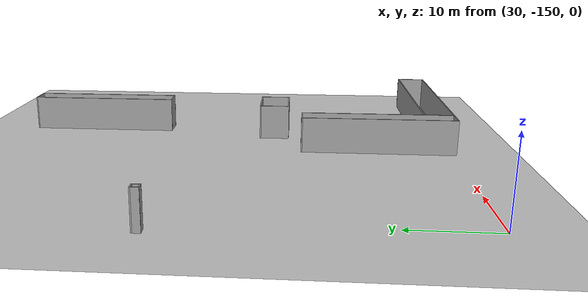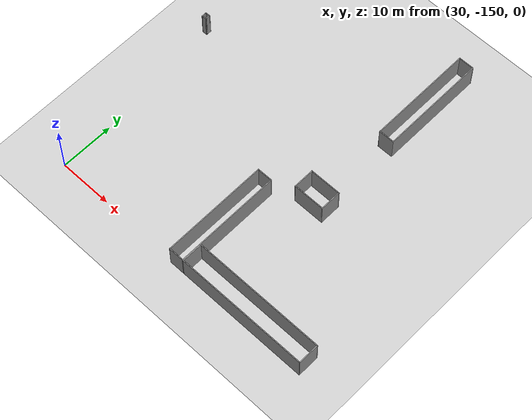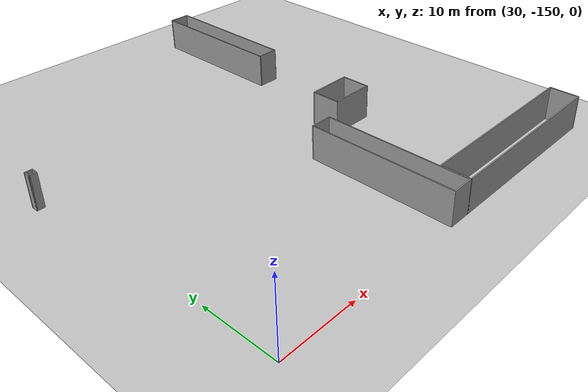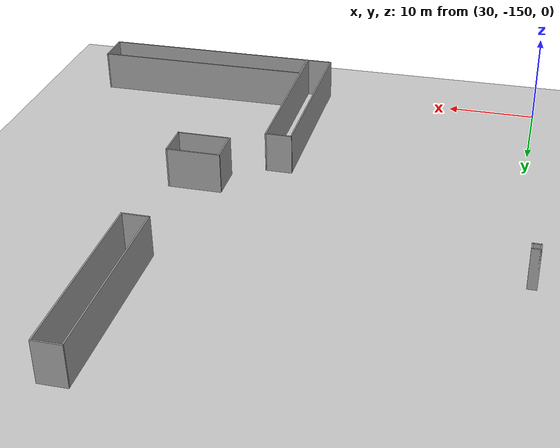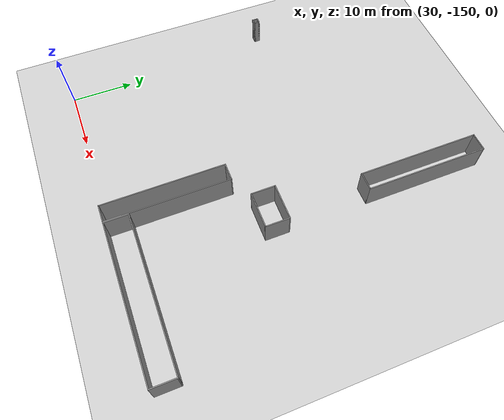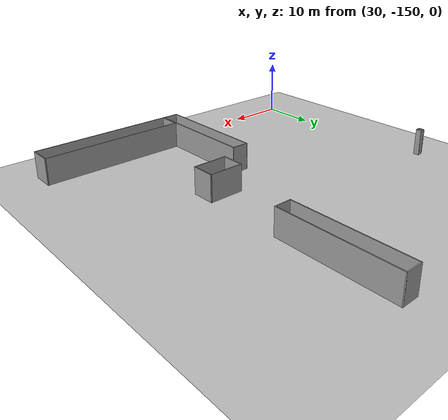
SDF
<sdf version="1.6">
 <world name="default">
  <model name="ground_plane">
   <static>1</static>
   <link name="link">
    <collision name="collision">
     <geometry><plane><normal>0 0 1</normal><size>320 320</size></plane></geometry>
     <surface>
      <contact><collide_bitmask>65535</collide_bitmask></contact>
      <friction><ode><mu>100</mu><mu2>50</mu2></ode></friction>
     </surface>
    </collision>
    <visual name="visual">
     <cast_shadows>0</cast_shadows>
     <geometry><plane><normal>0 0 1</normal><size>320 320</size></plane></geometry>
     <material>
      <script><uri>file://media/materials/scripts/gazebo.material</uri><name>Gazebo/Grey</name></script>
     </material>
    </visual>
   </link>
  </model>
  <model name="box_1mx1m_26">
   <pose>27.839 -115.001 0 0 -0 0</pose>
   <link name="Wall_10">
    <collision name="Wall_10_Collision">
     <geometry><box><size>1 0.15 6.555</size></box></geometry>
     <pose>0 0 1.25 0 -0 0</pose>
    </collision>
    <visual name="Wall_10_Visual">
     <pose>0 0 1.25 0 -0 0</pose>
     <geometry><box><size>1 0.15 6.555</size></box></geometry>
     <material>
      <script><uri>file://media/materials/scripts/gazebo.material</uri><name>Gazebo/Grey</name></script>
      <ambient>1 1 1 1</ambient>
     </material>
     <meta><layer>0</layer></meta>
    </visual>
    <pose>-0.425 0 0 0 -0 -1.5708</pose>
   </link>
   <link name="Wall_11">
    <collision name="Wall_11_Collision">
     <geometry><box><size>1 0.15 6.555</size></box></geometry>
     <pose>0 0 1.25 0 -0 0</pose>
    </collision>
    <visual name="Wall_11_Visual">
     <pose>0 0 1.25 0 -0 0</pose>
     <geometry><box><size>1 0.15 6.555</size></box></geometry>
     <material>
      <script><uri>file://media/materials/scripts/gazebo.material</uri><name>Gazebo/Grey</name></script>
      <ambient>1 1 1 1</ambient>
     </material>
     <meta><layer>0</layer></meta>
    </visual>
    <pose>0 -0.425 0 0 -0 0</pose>
   </link>
   <link name="Wall_12">
    <collision name="Wall_12_Collision">
     <geometry><box><size>1 0.15 6.555</size></box></geometry>
     <pose>0 0 1.25 0 -0 0</pose>
    </collision>
    <visual name="Wall_12_Visual">
     <pose>0 0 1.25 0 -0 0</pose>
     <geometry><box><size>1 0.15 6.555</size></box></geometry>
     <material>
      <script><uri>file://media/materials/scripts/gazebo.material</uri><name>Gazebo/Grey</name></script>
      <ambient>1 1 1 1</ambient>
     </material>
     <meta><layer>0</layer></meta>
    </visual>
    <pose>0.425 0 0 0 -0 1.5708</pose>
   </link>
   <link name="Wall_13">
    <collision name="Wall_13_Collision">
     <geometry><box><size>1 0.15 6.555</size></box></geometry>
     <pose>0 0 1.25 0 -0 0</pose>
    </collision>
    <visual name="Wall_13_Visual">
     <pose>0 0 1.25 0 -0 0</pose>
     <geometry><box><size>1 0.15 6.555</size></box></geometry>
     <material>
      <script><uri>file://media/materials/scripts/gazebo.material</uri><name>Gazebo/Grey</name></script>
      <ambient>1 1 1 1</ambient>
     </material>
     <meta><layer>0</layer></meta>
    </visual>
    <pose>0 0.425 0 0 -0 3.14159</pose>
   </link>
   <static>1</static>
  </model>
  <model name="base4x6_7_clone_6">
   <pose>64.5195 -126.706 0 0 -0 0</pose>
   <link name="Wall_23">
    <collision name="Wall_23_Collision">
     <geometry><box><size>4 0.15 6.555</size></box></geometry>
     <pose>0 0 1.25 0 -0 0</pose>
    </collision>
    <visual name="Wall_23_Visual">
     <pose>0 0 1.25 0 -0 0</pose>
     <geometry><box><size>4 0.15 6.555</size></box></geometry>
     <material>
      <script><uri>file://media/materials/scripts/gazebo.material</uri><name>Gazebo/Grey</name></script>
      <ambient>1 1 1 1</ambient>
     </material>
     <meta><layer>0</layer></meta>
    </visual>
    <pose>-2.925 0 0 0 -0 -1.5708</pose>
   </link>
   <link name="Wall_24">
    <collision name="Wall_24_Collision">
     <geometry><box><size>6 0.15 6.555</size></box></geometry>
     <pose>0 0 1.25 0 -0 0</pose>
    </collision>
    <visual name="Wall_24_Visual">
     <pose>0 0 1.25 0 -0 0</pose>
     <geometry><box><size>6 0.15 6.555</size></box></geometry>
     <material>
      <script><uri>file://media/materials/scripts/gazebo.material</uri><name>Gazebo/Grey</name></script>
      <ambient>1 1 1 1</ambient>
     </material>
     <meta><layer>0</layer></meta>
    </visual>
    <pose>-0 -1.925 0 0 -0 0</pose>
   </link>
   <link name="Wall_25">
    <collision name="Wall_25_Collision">
     <geometry><box><size>4 0.15 6.555</size></box></geometry>
     <pose>0 0 1.25 0 -0 0</pose>
    </collision>
    <visual name="Wall_25_Visual">
     <pose>0 0 1.25 0 -0 0</pose>
     <geometry><box><size>4 0.15 6.555</size></box></geometry>
     <material>
      <script><uri>file://media/materials/scripts/gazebo.material</uri><name>Gazebo/Grey</name></script>
      <ambient>1 1 1 1</ambient>
     </material>
     <meta><layer>0</layer></meta>
    </visual>
    <pose>2.925 0 0 0 -0 1.5708</pose>
   </link>
   <link name="Wall_26">
    <collision name="Wall_26_Collision">
     <geometry><box><size>6 0.15 6.555</size></box></geometry>
     <pose>0 0 1.25 0 -0 0</pose>
    </collision>
    <visual name="Wall_26_Visual">
     <pose>0 0 1.25 0 -0 0</pose>
     <geometry><box><size>6 0.15 6.555</size></box></geometry>
     <material>
      <script><uri>file://media/materials/scripts/gazebo.material</uri><name>Gazebo/Grey</name></script>
      <ambient>1 1 1 1</ambient>
     </material>
     <meta><layer>0</layer></meta>
    </visual>
    <pose>-0 1.925 0 0 -0 3.14159</pose>
   </link>
   <static>1</static>
  </model>
  <model name="base4x25_16_clone">
   <pose>70.6312 -148.44 0 0 -0 0</pose>
   <link name="Wall_11">
    <collision name="Wall_11_Collision">
     <geometry><box><size>4 0.15 6.555</size></box></geometry>
     <pose>0 0 1.25 0 -0 0</pose>
    </collision>
    <visual name="Wall_11_Visual">
     <pose>0 0 1.25 0 -0 0</pose>
     <geometry><box><size>4 0.15 6.555</size></box></geometry>
     <material>
      <script><uri>file://media/materials/scripts/gazebo.material</uri><name>Gazebo/Grey</name></script>
      <ambient>1 1 1 1</ambient>
     </material>
     <meta><layer>0</layer></meta>
    </visual>
    <pose>-12.425 0 0 0 -0 -1.5708</pose>
   </link>
   <link name="Wall_12">
    <collision name="Wall_12_Collision">
     <geometry><box><size>25 0.15 6.555</size></box></geometry>
     <pose>0 0 1.25 0 -0 0</pose>
    </collision>
    <visual name="Wall_12_Visual">
     <pose>0 0 1.25 0 -0 0</pose>
     <geometry><box><size>25 0.15 6.555</size></box></geometry>
     <material>
      <script><uri>file://media/materials/scripts/gazebo.material</uri><name>Gazebo/Grey</name></script>
      <ambient>1 1 1 1</ambient>
     </material>
     <meta><layer>0</layer></meta>
    </visual>
    <pose>0 -1.925 0 0 -0 0</pose>
   </link>
   <link name="Wall_13">
    <collision name="Wall_13_Collision">
     <geometry><box><size>4 0.15 6.555</size></box></geometry>
     <pose>0 0 1.25 0 -0 0</pose>
    </collision>
    <visual name="Wall_13_Visual">
     <pose>0 0 1.25 0 -0 0</pose>
     <geometry><box><size>4 0.15 6.555</size></box></geometry>
     <material>
      <script><uri>file://media/materials/scripts/gazebo.material</uri><name>Gazebo/Grey</name></script>
      <ambient>1 1 1 1</ambient>
     </material>
     <meta><layer>0</layer></meta>
    </visual>
    <pose>12.425 0 0 0 -0 1.5708</pose>
   </link>
   <link name="Wall_14">
    <collision name="Wall_14_Collision">
     <geometry><box><size>25 0.15 6.555</size></box></geometry>
     <pose>0 0 1.25 0 -0 0</pose>
    </collision>
    <visual name="Wall_14_Visual">
     <pose>0 0 1.25 0 -0 0</pose>
     <geometry><box><size>25 0.15 6.555</size></box></geometry>
     <material>
      <script><uri>file://media/materials/scripts/gazebo.material</uri><name>Gazebo/Grey</name></script>
      <ambient>1 1 1 1</ambient>
     </material>
     <meta><layer>0</layer></meta>
    </visual>
    <pose>0 1.925 0 0 -0 3.14159</pose>
   </link>
   <static>1</static>
  </model>
  <model name="base20x3_3_clone_2">
   <pose>65.8943 -101.746 0 0 -0 0</pose>
   <link name="Wall_21">
    <collision name="Wall_21_Collision">
     <geometry><box><size>20 0.15 6.555</size></box></geometry>
     <pose>0 0 1.25 0 -0 0</pose>
    </collision>
    <visual name="Wall_21_Visual">
     <pose>0 0 1.25 0 -0 0</pose>
     <geometry><box><size>20 0.15 6.555</size></box></geometry>
     <material>
      <script><uri>file://media/materials/scripts/gazebo.material</uri><name>Gazebo/Grey</name></script>
      <ambient>1 1 1 1</ambient>
     </material>
     <meta><layer>0</layer></meta>
    </visual>
    <pose>-1.425 -0 0 0 -0 -1.5708</pose>
   </link>
   <link name="Wall_22">
    <collision name="Wall_22_Collision">
     <geometry><box><size>3 0.15 6.555</size></box></geometry>
     <pose>0 0 1.25 0 -0 0</pose>
    </collision>
    <visual name="Wall_22_Visual">
     <pose>0 0 1.25 0 -0 0</pose>
     <geometry><box><size>3 0.15 6.555</size></box></geometry>
     <material>
      <script><uri>file://media/materials/scripts/gazebo.material</uri><name>Gazebo/Grey</name></script>
      <ambient>1 1 1 1</ambient>
     </material>
     <meta><layer>0</layer></meta>
    </visual>
    <pose>-0 -9.925 0 0 -0 0</pose>
   </link>
   <link name="Wall_23">
    <collision name="Wall_23_Collision">
     <geometry><box><size>20 0.15 6.555</size></box></geometry>
     <pose>0 0 1.25 0 -0 0</pose>
    </collision>
    <visual name="Wall_23_Visual">
     <pose>0 0 1.25 0 -0 0</pose>
     <geometry><box><size>20 0.15 6.555</size></box></geometry>
     <material>
      <script><uri>file://media/materials/scripts/gazebo.material</uri><name>Gazebo/Grey</name></script>
      <ambient>1 1 1 1</ambient>
     </material>
     <meta><layer>0</layer></meta>
    </visual>
    <pose>1.425 -0 0 0 -0 1.5708</pose>
   </link>
   <link name="Wall_24">
    <collision name="Wall_24_Collision">
     <geometry><box><size>3 0.15 6.555</size></box></geometry>
     <pose>0 0 1.25 0 -0 0</pose>
    </collision>
    <visual name="Wall_24_Visual">
     <pose>0 0 1.25 0 -0 0</pose>
     <geometry><box><size>3 0.15 6.555</size></box></geometry>
     <material>
      <script><uri>file://media/materials/scripts/gazebo.material</uri><name>Gazebo/Grey</name></script>
      <ambient>1 1 1 1</ambient>
     </material>
     <meta><layer>0</layer></meta>
    </visual>
    <pose>-0 9.925 0 0 -0 3.14159</pose>
   </link>
   <static>1</static>
  </model>
  <model name="base20x3_3_clone_3">
   <pose>56.6282 -140.438 0 0 -0 0</pose>
   <link name="Wall_21">
    <collision name="Wall_21_Collision">
     <geometry><box><size>20 0.15 6.555</size></box></geometry>
     <pose>0 0 1.25 0 -0 0</pose>
    </collision>
    <visual name="Wall_21_Visual">
     <pose>0 0 1.25 0 -0 0</pose>
     <geometry><box><size>20 0.15 6.555</size></box></geometry>
     <material>
      <script><uri>file://media/materials/scripts/gazebo.material</uri><name>Gazebo/Grey</name></script>
      <ambient>1 1 1 1</ambient>
     </material>
     <meta><layer>0</layer></meta>
    </visual>
    <pose>-1.425 -0 0 0 -0 -1.5708</pose>
   </link>
   <link name="Wall_22">
    <collision name="Wall_22_Collision">
     <geometry><box><size>3 0.15 6.555</size></box></geometry>
     <pose>0 0 1.25 0 -0 0</pose>
    </collision>
    <visual name="Wall_22_Visual">
     <pose>0 0 1.25 0 -0 0</pose>
     <geometry><box><size>3 0.15 6.555</size></box></geometry>
     <material>
      <script><uri>file://media/materials/scripts/gazebo.material</uri><name>Gazebo/Grey</name></script>
      <ambient>1 1 1 1</ambient>
     </material>
     <meta><layer>0</layer></meta>
    </visual>
    <pose>-0 -9.925 0 0 -0 0</pose>
   </link>
   <link name="Wall_23">
    <collision name="Wall_23_Collision">
     <geometry><box><size>20 0.15 6.555</size></box></geometry>
     <pose>0 0 1.25 0 -0 0</pose>
    </collision>
    <visual name="Wall_23_Visual">
     <pose>0 0 1.25 0 -0 0</pose>
     <geometry><box><size>20 0.15 6.555</size></box></geometry>
     <material>
      <script><uri>file://media/materials/scripts/gazebo.material</uri><name>Gazebo/Grey</name></script>
      <ambient>1 1 1 1</ambient>
     </material>
     <meta><layer>0</layer></meta>
    </visual>
    <pose>1.425 -0 0 0 -0 1.5708</pose>
   </link>
   <link name="Wall_24">
    <collision name="Wall_24_Collision">
     <geometry><box><size>3 0.15 6.555</size></box></geometry>
     <pose>0 0 1.25 0 -0 0</pose>
    </collision>
    <visual name="Wall_24_Visual">
     <pose>0 0 1.25 0 -0 0</pose>
     <geometry><box><size>3 0.15 6.555</size></box></geometry>
     <material>
      <script><uri>file://media/materials/scripts/gazebo.material</uri><name>Gazebo/Grey</name></script>
      <ambient>1 1 1 1</ambient>
     </material>
     <meta><layer>0</layer></meta>
    </visual>
    <pose>-0 9.925 0 0 -0 3.14159</pose>
   </link>
   <static>1</static>
  </model>
 </world>
</sdf>
